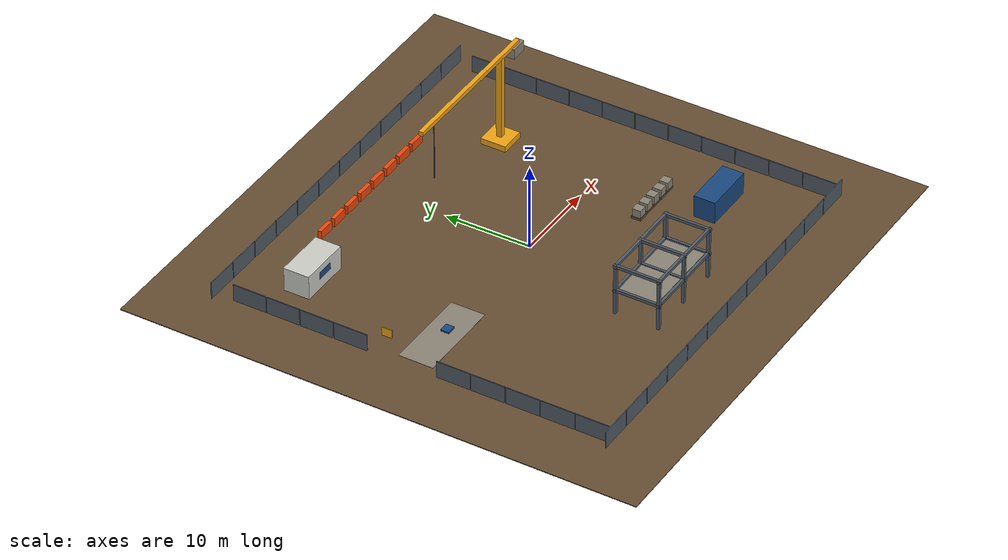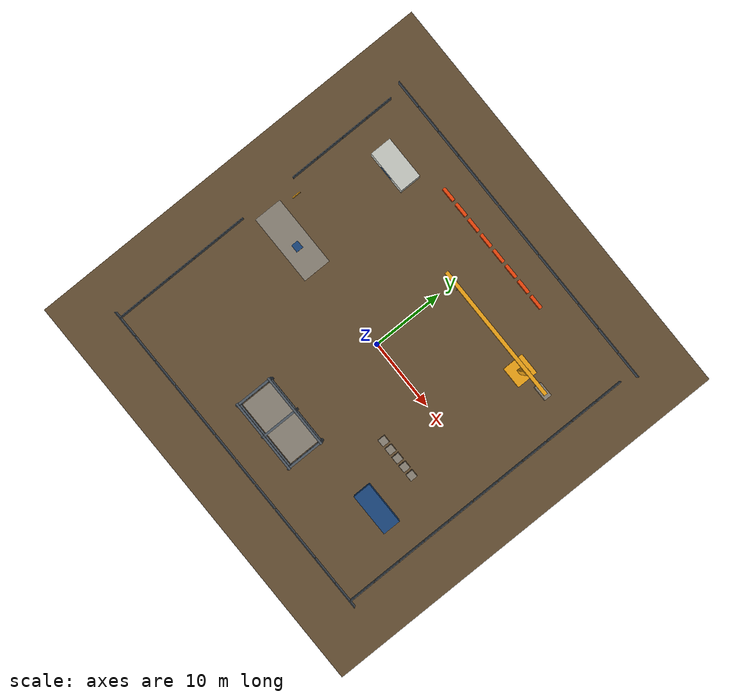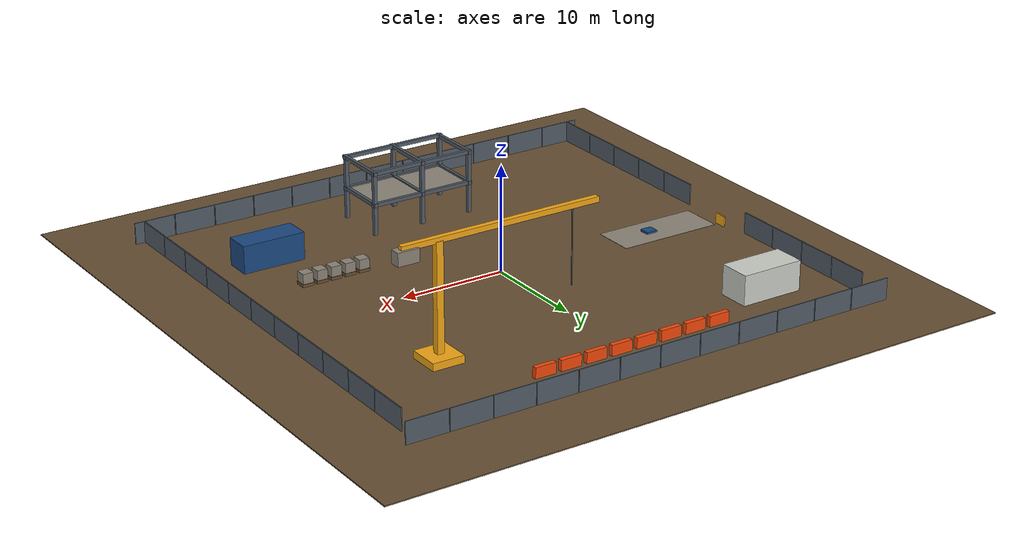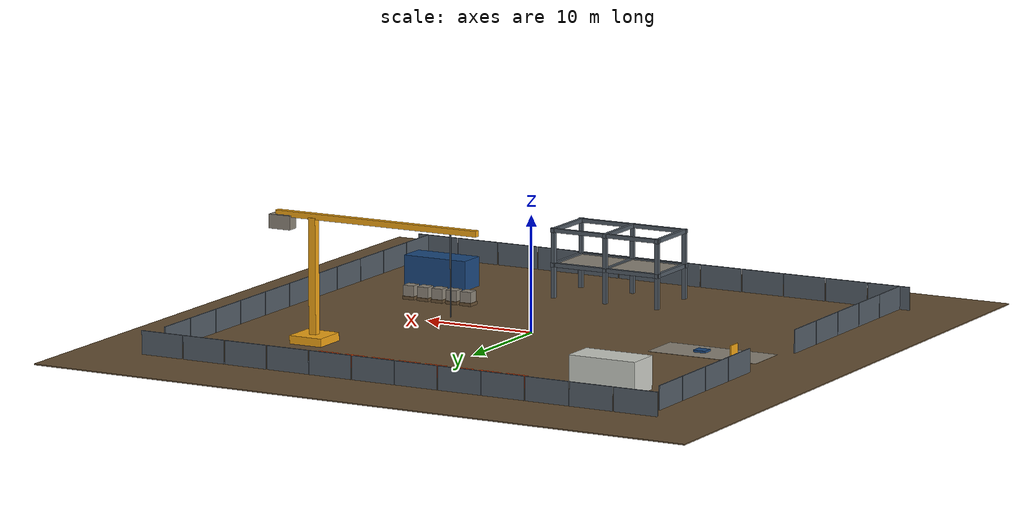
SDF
<?xml version='1.0' encoding='utf-8'?>
<sdf version="1.8">
  <world name="niihan_construction_site">
    <spherical_coordinates>
      <surface_model>EARTH_WGS84</surface_model>
      <world_frame_orientation>ENU</world_frame_orientation>
      <latitude_deg>12.9716</latitude_deg>
      <longitude_deg>77.5946</longitude_deg>
      <elevation>0</elevation>
      <heading_deg>0</heading_deg>
    </spherical_coordinates>
    <plugin filename="gz-sim-physics-system" name="gz::sim::systems::Physics" />
    <plugin filename="gz-sim-user-commands-system" name="gz::sim::systems::UserCommands" />
    <plugin filename="gz-sim-scene-broadcaster-system" name="gz::sim::systems::SceneBroadcaster" />
    <plugin filename="gz-sim-sensors-system" name="gz::sim::systems::Sensors">
      <render_engine>ogre2</render_engine>
    </plugin>
    <plugin filename="gz-sim-imu-system" name="gz::sim::systems::Imu" />
    <physics name="default_physics" type="ode">
      <max_step_size>0.001</max_step_size>
      <real_time_factor>1.0</real_time_factor>
      <real_time_update_rate>1000</real_time_update_rate>
      <ode>
        <solver>
          <type>quick</type>
          <iters>50</iters>
        </solver>
      </ode>
    </physics>
    <gravity>0 0 -9.81</gravity>
    <scene>
      <ambient>0.5 0.5 0.5 1</ambient>
      <background>0.6 0.7 0.8 1</background>
      <shadows>true</shadows>
    </scene>
    <light type="directional" name="sun">
      <cast_shadows>true</cast_shadows>
      <pose>0 0 15 0 0 0</pose>
      <diffuse>0.9 0.9 0.85 1</diffuse>
      <specular>0.2 0.2 0.2 1</specular>
      <direction>-0.4 0.2 -0.9</direction>
    </light>
    <plugin filename="gz-sim-contact-system" name="gz::sim::systems::Contact" />
    <plugin filename="gz-sim-navsat-system" name="gz::sim::systems::NavSat" />
    <model name="fence_n_0">
      <static>true</static>
      <pose>-22 23 1.1 0 0 0</pose>
      <link name="body">
        <collision name="collision">
          <geometry>
            <box>
              <size>3.9 0.1 2</size>
            </box>
          </geometry>
        </collision>
        <visual name="visual">
          <geometry>
            <box>
              <size>3.9 0.1 2</size>
            </box>
          </geometry>
          <material>
            <ambient>.32 .36 .40 1</ambient>
            <diffuse>.32 .36 .40 1</diffuse>
          </material>
        </visual>
      </link>
    </model>
    <model name="fence_s_0">
      <static>true</static>
      <pose>-22 -23 1.1 0 0 0</pose>
      <link name="body">
        <collision name="collision">
          <geometry>
            <box>
              <size>3.9 0.1 2</size>
            </box>
          </geometry>
        </collision>
        <visual name="visual">
          <geometry>
            <box>
              <size>3.9 0.1 2</size>
            </box>
          </geometry>
          <material>
            <ambient>.32 .36 .40 1</ambient>
            <diffuse>.32 .36 .40 1</diffuse>
          </material>
        </visual>
      </link>
    </model>
    <model name="fence_n_1">
      <static>true</static>
      <pose>-18 23 1.1 0 0 0</pose>
      <link name="body">
        <collision name="collision">
          <geometry>
            <box>
              <size>3.9 0.1 2</size>
            </box>
          </geometry>
        </collision>
        <visual name="visual">
          <geometry>
            <box>
              <size>3.9 0.1 2</size>
            </box>
          </geometry>
          <material>
            <ambient>.32 .36 .40 1</ambient>
            <diffuse>.32 .36 .40 1</diffuse>
          </material>
        </visual>
      </link>
    </model>
    <model name="fence_s_1">
      <static>true</static>
      <pose>-18 -23 1.1 0 0 0</pose>
      <link name="body">
        <collision name="collision">
          <geometry>
            <box>
              <size>3.9 0.1 2</size>
            </box>
          </geometry>
        </collision>
        <visual name="visual">
          <geometry>
            <box>
              <size>3.9 0.1 2</size>
            </box>
          </geometry>
          <material>
            <ambient>.32 .36 .40 1</ambient>
            <diffuse>.32 .36 .40 1</diffuse>
          </material>
        </visual>
      </link>
    </model>
    <model name="fence_n_2">
      <static>true</static>
      <pose>-14 23 1.1 0 0 0</pose>
      <link name="body">
        <collision name="collision">
          <geometry>
            <box>
              <size>3.9 0.1 2</size>
            </box>
          </geometry>
        </collision>
        <visual name="visual">
          <geometry>
            <box>
              <size>3.9 0.1 2</size>
            </box>
          </geometry>
          <material>
            <ambient>.32 .36 .40 1</ambient>
            <diffuse>.32 .36 .40 1</diffuse>
          </material>
        </visual>
      </link>
    </model>
    <model name="fence_s_2">
      <static>true</static>
      <pose>-14 -23 1.1 0 0 0</pose>
      <link name="body">
        <collision name="collision">
          <geometry>
            <box>
              <size>3.9 0.1 2</size>
            </box>
          </geometry>
        </collision>
        <visual name="visual">
          <geometry>
            <box>
              <size>3.9 0.1 2</size>
            </box>
          </geometry>
          <material>
            <ambient>.32 .36 .40 1</ambient>
            <diffuse>.32 .36 .40 1</diffuse>
          </material>
        </visual>
      </link>
    </model>
    <model name="fence_n_3">
      <static>true</static>
      <pose>-10 23 1.1 0 0 0</pose>
      <link name="body">
        <collision name="collision">
          <geometry>
            <box>
              <size>3.9 0.1 2</size>
            </box>
          </geometry>
        </collision>
        <visual name="visual">
          <geometry>
            <box>
              <size>3.9 0.1 2</size>
            </box>
          </geometry>
          <material>
            <ambient>.32 .36 .40 1</ambient>
            <diffuse>.32 .36 .40 1</diffuse>
          </material>
        </visual>
      </link>
    </model>
    <model name="fence_s_3">
      <static>true</static>
      <pose>-10 -23 1.1 0 0 0</pose>
      <link name="body">
        <collision name="collision">
          <geometry>
            <box>
              <size>3.9 0.1 2</size>
            </box>
          </geometry>
        </collision>
        <visual name="visual">
          <geometry>
            <box>
              <size>3.9 0.1 2</size>
            </box>
          </geometry>
          <material>
            <ambient>.32 .36 .40 1</ambient>
            <diffuse>.32 .36 .40 1</diffuse>
          </material>
        </visual>
      </link>
    </model>
    <model name="fence_n_4">
      <static>true</static>
      <pose>-6 23 1.1 0 0 0</pose>
      <link name="body">
        <collision name="collision">
          <geometry>
            <box>
              <size>3.9 0.1 2</size>
            </box>
          </geometry>
        </collision>
        <visual name="visual">
          <geometry>
            <box>
              <size>3.9 0.1 2</size>
            </box>
          </geometry>
          <material>
            <ambient>.32 .36 .40 1</ambient>
            <diffuse>.32 .36 .40 1</diffuse>
          </material>
        </visual>
      </link>
    </model>
    <model name="fence_s_4">
      <static>true</static>
      <pose>-6 -23 1.1 0 0 0</pose>
      <link name="body">
        <collision name="collision">
          <geometry>
            <box>
              <size>3.9 0.1 2</size>
            </box>
          </geometry>
        </collision>
        <visual name="visual">
          <geometry>
            <box>
              <size>3.9 0.1 2</size>
            </box>
          </geometry>
          <material>
            <ambient>.32 .36 .40 1</ambient>
            <diffuse>.32 .36 .40 1</diffuse>
          </material>
        </visual>
      </link>
    </model>
    <model name="fence_n_5">
      <static>true</static>
      <pose>-2 23 1.1 0 0 0</pose>
      <link name="body">
        <collision name="collision">
          <geometry>
            <box>
              <size>3.9 0.1 2</size>
            </box>
          </geometry>
        </collision>
        <visual name="visual">
          <geometry>
            <box>
              <size>3.9 0.1 2</size>
            </box>
          </geometry>
          <material>
            <ambient>.32 .36 .40 1</ambient>
            <diffuse>.32 .36 .40 1</diffuse>
          </material>
        </visual>
      </link>
    </model>
    <model name="fence_s_5">
      <static>true</static>
      <pose>-2 -23 1.1 0 0 0</pose>
      <link name="body">
        <collision name="collision">
          <geometry>
            <box>
              <size>3.9 0.1 2</size>
            </box>
          </geometry>
        </collision>
        <visual name="visual">
          <geometry>
            <box>
              <size>3.9 0.1 2</size>
            </box>
          </geometry>
          <material>
            <ambient>.32 .36 .40 1</ambient>
            <diffuse>.32 .36 .40 1</diffuse>
          </material>
        </visual>
      </link>
    </model>
    <model name="fence_n_6">
      <static>true</static>
      <pose>2 23 1.1 0 0 0</pose>
      <link name="body">
        <collision name="collision">
          <geometry>
            <box>
              <size>3.9 0.1 2</size>
            </box>
          </geometry>
        </collision>
        <visual name="visual">
          <geometry>
            <box>
              <size>3.9 0.1 2</size>
            </box>
          </geometry>
          <material>
            <ambient>.32 .36 .40 1</ambient>
            <diffuse>.32 .36 .40 1</diffuse>
          </material>
        </visual>
      </link>
    </model>
    <model name="fence_s_6">
      <static>true</static>
      <pose>2 -23 1.1 0 0 0</pose>
      <link name="body">
        <collision name="collision">
          <geometry>
            <box>
              <size>3.9 0.1 2</size>
            </box>
          </geometry>
        </collision>
        <visual name="visual">
          <geometry>
            <box>
              <size>3.9 0.1 2</size>
            </box>
          </geometry>
          <material>
            <ambient>.32 .36 .40 1</ambient>
            <diffuse>.32 .36 .40 1</diffuse>
          </material>
        </visual>
      </link>
    </model>
    <model name="fence_n_7">
      <static>true</static>
      <pose>6 23 1.1 0 0 0</pose>
      <link name="body">
        <collision name="collision">
          <geometry>
            <box>
              <size>3.9 0.1 2</size>
            </box>
          </geometry>
        </collision>
        <visual name="visual">
          <geometry>
            <box>
              <size>3.9 0.1 2</size>
            </box>
          </geometry>
          <material>
            <ambient>.32 .36 .40 1</ambient>
            <diffuse>.32 .36 .40 1</diffuse>
          </material>
        </visual>
      </link>
    </model>
    <model name="fence_s_7">
      <static>true</static>
      <pose>6 -23 1.1 0 0 0</pose>
      <link name="body">
        <collision name="collision">
          <geometry>
            <box>
              <size>3.9 0.1 2</size>
            </box>
          </geometry>
        </collision>
        <visual name="visual">
          <geometry>
            <box>
              <size>3.9 0.1 2</size>
            </box>
          </geometry>
          <material>
            <ambient>.32 .36 .40 1</ambient>
            <diffuse>.32 .36 .40 1</diffuse>
          </material>
        </visual>
      </link>
    </model>
    <model name="fence_n_8">
      <static>true</static>
      <pose>10 23 1.1 0 0 0</pose>
      <link name="body">
        <collision name="collision">
          <geometry>
            <box>
              <size>3.9 0.1 2</size>
            </box>
          </geometry>
        </collision>
        <visual name="visual">
          <geometry>
            <box>
              <size>3.9 0.1 2</size>
            </box>
          </geometry>
          <material>
            <ambient>.32 .36 .40 1</ambient>
            <diffuse>.32 .36 .40 1</diffuse>
          </material>
        </visual>
      </link>
    </model>
    <model name="fence_s_8">
      <static>true</static>
      <pose>10 -23 1.1 0 0 0</pose>
      <link name="body">
        <collision name="collision">
          <geometry>
            <box>
              <size>3.9 0.1 2</size>
            </box>
          </geometry>
        </collision>
        <visual name="visual">
          <geometry>
            <box>
              <size>3.9 0.1 2</size>
            </box>
          </geometry>
          <material>
            <ambient>.32 .36 .40 1</ambient>
            <diffuse>.32 .36 .40 1</diffuse>
          </material>
        </visual>
      </link>
    </model>
    <model name="fence_n_9">
      <static>true</static>
      <pose>14 23 1.1 0 0 0</pose>
      <link name="body">
        <collision name="collision">
          <geometry>
            <box>
              <size>3.9 0.1 2</size>
            </box>
          </geometry>
        </collision>
        <visual name="visual">
          <geometry>
            <box>
              <size>3.9 0.1 2</size>
            </box>
          </geometry>
          <material>
            <ambient>.32 .36 .40 1</ambient>
            <diffuse>.32 .36 .40 1</diffuse>
          </material>
        </visual>
      </link>
    </model>
    <model name="fence_s_9">
      <static>true</static>
      <pose>14 -23 1.1 0 0 0</pose>
      <link name="body">
        <collision name="collision">
          <geometry>
            <box>
              <size>3.9 0.1 2</size>
            </box>
          </geometry>
        </collision>
        <visual name="visual">
          <geometry>
            <box>
              <size>3.9 0.1 2</size>
            </box>
          </geometry>
          <material>
            <ambient>.32 .36 .40 1</ambient>
            <diffuse>.32 .36 .40 1</diffuse>
          </material>
        </visual>
      </link>
    </model>
    <model name="fence_n_10">
      <static>true</static>
      <pose>18 23 1.1 0 0 0</pose>
      <link name="body">
        <collision name="collision">
          <geometry>
            <box>
              <size>3.9 0.1 2</size>
            </box>
          </geometry>
        </collision>
        <visual name="visual">
          <geometry>
            <box>
              <size>3.9 0.1 2</size>
            </box>
          </geometry>
          <material>
            <ambient>.32 .36 .40 1</ambient>
            <diffuse>.32 .36 .40 1</diffuse>
          </material>
        </visual>
      </link>
    </model>
    <model name="fence_s_10">
      <static>true</static>
      <pose>18 -23 1.1 0 0 0</pose>
      <link name="body">
        <collision name="collision">
          <geometry>
            <box>
              <size>3.9 0.1 2</size>
            </box>
          </geometry>
        </collision>
        <visual name="visual">
          <geometry>
            <box>
              <size>3.9 0.1 2</size>
            </box>
          </geometry>
          <material>
            <ambient>.32 .36 .40 1</ambient>
            <diffuse>.32 .36 .40 1</diffuse>
          </material>
        </visual>
      </link>
    </model>
    <model name="fence_n_11">
      <static>true</static>
      <pose>22 23 1.1 0 0 0</pose>
      <link name="body">
        <collision name="collision">
          <geometry>
            <box>
              <size>3.9 0.1 2</size>
            </box>
          </geometry>
        </collision>
        <visual name="visual">
          <geometry>
            <box>
              <size>3.9 0.1 2</size>
            </box>
          </geometry>
          <material>
            <ambient>.32 .36 .40 1</ambient>
            <diffuse>.32 .36 .40 1</diffuse>
          </material>
        </visual>
      </link>
    </model>
    <model name="fence_s_11">
      <static>true</static>
      <pose>22 -23 1.1 0 0 0</pose>
      <link name="body">
        <collision name="collision">
          <geometry>
            <box>
              <size>3.9 0.1 2</size>
            </box>
          </geometry>
        </collision>
        <visual name="visual">
          <geometry>
            <box>
              <size>3.9 0.1 2</size>
            </box>
          </geometry>
          <material>
            <ambient>.32 .36 .40 1</ambient>
            <diffuse>.32 .36 .40 1</diffuse>
          </material>
        </visual>
      </link>
    </model>
    <model name="fence_e_0">
      <static>true</static>
      <pose>23 -21 1.1 0 0 0</pose>
      <link name="body">
        <collision name="collision">
          <geometry>
            <box>
              <size>0.1 3.9 2</size>
            </box>
          </geometry>
        </collision>
        <visual name="visual">
          <geometry>
            <box>
              <size>0.1 3.9 2</size>
            </box>
          </geometry>
          <material>
            <ambient>.32 .36 .40 1</ambient>
            <diffuse>.32 .36 .40 1</diffuse>
          </material>
        </visual>
      </link>
    </model>
    <model name="fence_w_0">
      <static>true</static>
      <pose>-23 -21 1.1 0 0 0</pose>
      <link name="body">
        <collision name="collision">
          <geometry>
            <box>
              <size>0.1 3.9 2</size>
            </box>
          </geometry>
        </collision>
        <visual name="visual">
          <geometry>
            <box>
              <size>0.1 3.9 2</size>
            </box>
          </geometry>
          <material>
            <ambient>.32 .36 .40 1</ambient>
            <diffuse>.32 .36 .40 1</diffuse>
          </material>
        </visual>
      </link>
    </model>
    <model name="fence_e_1">
      <static>true</static>
      <pose>23 -17 1.1 0 0 0</pose>
      <link name="body">
        <collision name="collision">
          <geometry>
            <box>
              <size>0.1 3.9 2</size>
            </box>
          </geometry>
        </collision>
        <visual name="visual">
          <geometry>
            <box>
              <size>0.1 3.9 2</size>
            </box>
          </geometry>
          <material>
            <ambient>.32 .36 .40 1</ambient>
            <diffuse>.32 .36 .40 1</diffuse>
          </material>
        </visual>
      </link>
    </model>
    <model name="fence_w_1">
      <static>true</static>
      <pose>-23 -17 1.1 0 0 0</pose>
      <link name="body">
        <collision name="collision">
          <geometry>
            <box>
              <size>0.1 3.9 2</size>
            </box>
          </geometry>
        </collision>
        <visual name="visual">
          <geometry>
            <box>
              <size>0.1 3.9 2</size>
            </box>
          </geometry>
          <material>
            <ambient>.32 .36 .40 1</ambient>
            <diffuse>.32 .36 .40 1</diffuse>
          </material>
        </visual>
      </link>
    </model>
    <model name="fence_e_2">
      <static>true</static>
      <pose>23 -13 1.1 0 0 0</pose>
      <link name="body">
        <collision name="collision">
          <geometry>
            <box>
              <size>0.1 3.9 2</size>
            </box>
          </geometry>
        </collision>
        <visual name="visual">
          <geometry>
            <box>
              <size>0.1 3.9 2</size>
            </box>
          </geometry>
          <material>
            <ambient>.32 .36 .40 1</ambient>
            <diffuse>.32 .36 .40 1</diffuse>
          </material>
        </visual>
      </link>
    </model>
    <model name="fence_w_2">
      <static>true</static>
      <pose>-23 -13 1.1 0 0 0</pose>
      <link name="body">
        <collision name="collision">
          <geometry>
            <box>
              <size>0.1 3.9 2</size>
            </box>
          </geometry>
        </collision>
        <visual name="visual">
          <geometry>
            <box>
              <size>0.1 3.9 2</size>
            </box>
          </geometry>
          <material>
            <ambient>.32 .36 .40 1</ambient>
            <diffuse>.32 .36 .40 1</diffuse>
          </material>
        </visual>
      </link>
    </model>
    <model name="fence_e_3">
      <static>true</static>
      <pose>23 -9 1.1 0 0 0</pose>
      <link name="body">
        <collision name="collision">
          <geometry>
            <box>
              <size>0.1 3.9 2</size>
            </box>
          </geometry>
        </collision>
        <visual name="visual">
          <geometry>
            <box>
              <size>0.1 3.9 2</size>
            </box>
          </geometry>
          <material>
            <ambient>.32 .36 .40 1</ambient>
            <diffuse>.32 .36 .40 1</diffuse>
          </material>
        </visual>
      </link>
    </model>
    <model name="fence_w_3">
      <static>true</static>
      <pose>-23 -9 1.1 0 0 0</pose>
      <link name="body">
        <collision name="collision">
          <geometry>
            <box>
              <size>0.1 3.9 2</size>
            </box>
          </geometry>
        </collision>
        <visual name="visual">
          <geometry>
            <box>
              <size>0.1 3.9 2</size>
            </box>
          </geometry>
          <material>
            <ambient>.32 .36 .40 1</ambient>
            <diffuse>.32 .36 .40 1</diffuse>
          </material>
        </visual>
      </link>
    </model>
    <model name="fence_e_4">
      <static>true</static>
      <pose>23 -5 1.1 0 0 0</pose>
      <link name="body">
        <collision name="collision">
          <geometry>
            <box>
              <size>0.1 3.9 2</size>
            </box>
          </geometry>
        </collision>
        <visual name="visual">
          <geometry>
            <box>
              <size>0.1 3.9 2</size>
            </box>
          </geometry>
          <material>
            <ambient>.32 .36 .40 1</ambient>
            <diffuse>.32 .36 .40 1</diffuse>
          </material>
        </visual>
      </link>
    </model>
    <model name="fence_w_4">
      <static>true</static>
      <pose>-23 -5 1.1 0 0 0</pose>
      <link name="body">
        <collision name="collision">
          <geometry>
            <box>
              <size>0.1 3.9 2</size>
            </box>
          </geometry>
        </collision>
        <visual name="visual">
          <geometry>
            <box>
              <size>0.1 3.9 2</size>
            </box>
          </geometry>
          <material>
            <ambient>.32 .36 .40 1</ambient>
            <diffuse>.32 .36 .40 1</diffuse>
          </material>
        </visual>
      </link>
    </model>
    <model name="fence_e_5">
      <static>true</static>
      <pose>23 -1 1.1 0 0 0</pose>
      <link name="body">
        <collision name="collision">
          <geometry>
            <box>
              <size>0.1 3.9 2</size>
            </box>
          </geometry>
        </collision>
        <visual name="visual">
          <geometry>
            <box>
              <size>0.1 3.9 2</size>
            </box>
          </geometry>
          <material>
            <ambient>.32 .36 .40 1</ambient>
            <diffuse>.32 .36 .40 1</diffuse>
          </material>
        </visual>
      </link>
    </model>
    <model name="fence_e_6">
      <static>true</static>
      <pose>23 3 1.1 0 0 0</pose>
      <link name="body">
        <collision name="collision">
          <geometry>
            <box>
              <size>0.1 3.9 2</size>
            </box>
          </geometry>
        </collision>
        <visual name="visual">
          <geometry>
            <box>
              <size>0.1 3.9 2</size>
            </box>
          </geometry>
          <material>
            <ambient>.32 .36 .40 1</ambient>
            <diffuse>.32 .36 .40 1</diffuse>
          </material>
        </visual>
      </link>
    </model>
    <model name="fence_e_7">
      <static>true</static>
      <pose>23 7 1.1 0 0 0</pose>
      <link name="body">
        <collision name="collision">
          <geometry>
            <box>
              <size>0.1 3.9 2</size>
            </box>
          </geometry>
        </collision>
        <visual name="visual">
          <geometry>
            <box>
              <size>0.1 3.9 2</size>
            </box>
          </geometry>
          <material>
            <ambient>.32 .36 .40 1</ambient>
            <diffuse>.32 .36 .40 1</diffuse>
          </material>
        </visual>
      </link>
    </model>
    <model name="fence_w_7">
      <static>true</static>
      <pose>-23 7 1.1 0 0 0</pose>
      <link name="body">
        <collision name="collision">
          <geometry>
            <box>
              <size>0.1 3.9 2</size>
            </box>
          </geometry>
        </collision>
        <visual name="visual">
          <geometry>
            <box>
              <size>0.1 3.9 2</size>
            </box>
          </geometry>
          <material>
            <ambient>.32 .36 .40 1</ambient>
            <diffuse>.32 .36 .40 1</diffuse>
          </material>
        </visual>
      </link>
    </model>
    <model name="fence_e_8">
      <static>true</static>
      <pose>23 11 1.1 0 0 0</pose>
      <link name="body">
        <collision name="collision">
          <geometry>
            <box>
              <size>0.1 3.9 2</size>
            </box>
          </geometry>
        </collision>
        <visual name="visual">
          <geometry>
            <box>
              <size>0.1 3.9 2</size>
            </box>
          </geometry>
          <material>
            <ambient>.32 .36 .40 1</ambient>
            <diffuse>.32 .36 .40 1</diffuse>
          </material>
        </visual>
      </link>
    </model>
    <model name="fence_w_8">
      <static>true</static>
      <pose>-23 11 1.1 0 0 0</pose>
      <link name="body">
        <collision name="collision">
          <geometry>
            <box>
              <size>0.1 3.9 2</size>
            </box>
          </geometry>
        </collision>
        <visual name="visual">
          <geometry>
            <box>
              <size>0.1 3.9 2</size>
            </box>
          </geometry>
          <material>
            <ambient>.32 .36 .40 1</ambient>
            <diffuse>.32 .36 .40 1</diffuse>
          </material>
        </visual>
      </link>
    </model>
    <model name="fence_e_9">
      <static>true</static>
      <pose>23 15 1.1 0 0 0</pose>
      <link name="body">
        <collision name="collision">
          <geometry>
            <box>
              <size>0.1 3.9 2</size>
            </box>
          </geometry>
        </collision>
        <visual name="visual">
          <geometry>
            <box>
              <size>0.1 3.9 2</size>
            </box>
          </geometry>
          <material>
            <ambient>.32 .36 .40 1</ambient>
            <diffuse>.32 .36 .40 1</diffuse>
          </material>
        </visual>
      </link>
    </model>
    <model name="fence_w_9">
      <static>true</static>
      <pose>-23 15 1.1 0 0 0</pose>
      <link name="body">
        <collision name="collision">
          <geometry>
            <box>
              <size>0.1 3.9 2</size>
            </box>
          </geometry>
        </collision>
        <visual name="visual">
          <geometry>
            <box>
              <size>0.1 3.9 2</size>
            </box>
          </geometry>
          <material>
            <ambient>.32 .36 .40 1</ambient>
            <diffuse>.32 .36 .40 1</diffuse>
          </material>
        </visual>
      </link>
    </model>
    <model name="fence_e_10">
      <static>true</static>
      <pose>23 19 1.1 0 0 0</pose>
      <link name="body">
        <collision name="collision">
          <geometry>
            <box>
              <size>0.1 3.9 2</size>
            </box>
          </geometry>
        </collision>
        <visual name="visual">
          <geometry>
            <box>
              <size>0.1 3.9 2</size>
            </box>
          </geometry>
          <material>
            <ambient>.32 .36 .40 1</ambient>
            <diffuse>.32 .36 .40 1</diffuse>
          </material>
        </visual>
      </link>
    </model>
    <model name="fence_w_10">
      <static>true</static>
      <pose>-23 19 1.1 0 0 0</pose>
      <link name="body">
        <collision name="collision">
          <geometry>
            <box>
              <size>0.1 3.9 2</size>
            </box>
          </geometry>
        </collision>
        <visual name="visual">
          <geometry>
            <box>
              <size>0.1 3.9 2</size>
            </box>
          </geometry>
          <material>
            <ambient>.32 .36 .40 1</ambient>
            <diffuse>.32 .36 .40 1</diffuse>
          </material>
        </visual>
      </link>
    </model>
    <model name="column_-5_-18">
      <static>true</static>
      <pose>-5 -18 3 0 0 0</pose>
      <link name="body">
        <collision name="collision">
          <geometry>
            <box>
              <size>0.35 0.35 5.8</size>
            </box>
          </geometry>
        </collision>
        <visual name="visual">
          <geometry>
            <box>
              <size>0.35 0.35 5.8</size>
            </box>
          </geometry>
          <material>
            <ambient>.32 .36 .40 1</ambient>
            <diffuse>.32 .36 .40 1</diffuse>
          </material>
        </visual>
      </link>
    </model>
    <model name="column_-5_-13">
      <static>true</static>
      <pose>-5 -13 3 0 0 0</pose>
      <link name="body">
        <collision name="collision">
          <geometry>
            <box>
              <size>0.35 0.35 5.8</size>
            </box>
          </geometry>
        </collision>
        <visual name="visual">
          <geometry>
            <box>
              <size>0.35 0.35 5.8</size>
            </box>
          </geometry>
          <material>
            <ambient>.32 .36 .40 1</ambient>
            <diffuse>.32 .36 .40 1</diffuse>
          </material>
        </visual>
      </link>
    </model>
    <model name="column_0_-18">
      <static>true</static>
      <pose>0 -18 3 0 0 0</pose>
      <link name="body">
        <collision name="collision">
          <geometry>
            <box>
              <size>0.35 0.35 5.8</size>
            </box>
          </geometry>
        </collision>
        <visual name="visual">
          <geometry>
            <box>
              <size>0.35 0.35 5.8</size>
            </box>
          </geometry>
          <material>
            <ambient>.32 .36 .40 1</ambient>
            <diffuse>.32 .36 .40 1</diffuse>
          </material>
        </visual>
      </link>
    </model>
    <model name="column_0_-13">
      <static>true</static>
      <pose>0 -13 3 0 0 0</pose>
      <link name="body">
        <collision name="collision">
          <geometry>
            <box>
              <size>0.35 0.35 5.8</size>
            </box>
          </geometry>
        </collision>
        <visual name="visual">
          <geometry>
            <box>
              <size>0.35 0.35 5.8</size>
            </box>
          </geometry>
          <material>
            <ambient>.32 .36 .40 1</ambient>
            <diffuse>.32 .36 .40 1</diffuse>
          </material>
        </visual>
      </link>
    </model>
    <model name="column_5_-18">
      <static>true</static>
      <pose>5 -18 3 0 0 0</pose>
      <link name="body">
        <collision name="collision">
          <geometry>
            <box>
              <size>0.35 0.35 5.8</size>
            </box>
          </geometry>
        </collision>
        <visual name="visual">
          <geometry>
            <box>
              <size>0.35 0.35 5.8</size>
            </box>
          </geometry>
          <material>
            <ambient>.32 .36 .40 1</ambient>
            <diffuse>.32 .36 .40 1</diffuse>
          </material>
        </visual>
      </link>
    </model>
    <model name="column_5_-13">
      <static>true</static>
      <pose>5 -13 3 0 0 0</pose>
      <link name="body">
        <collision name="collision">
          <geometry>
            <box>
              <size>0.35 0.35 5.8</size>
            </box>
          </geometry>
        </collision>
        <visual name="visual">
          <geometry>
            <box>
              <size>0.35 0.35 5.8</size>
            </box>
          </geometry>
          <material>
            <ambient>.32 .36 .40 1</ambient>
            <diffuse>.32 .36 .40 1</diffuse>
          </material>
        </visual>
      </link>
    </model>
    <model name="beam_x_-18_3">
      <static>true</static>
      <pose>0 -18 3 0 0 0</pose>
      <link name="body">
        <collision name="collision">
          <geometry>
            <box>
              <size>10.5 0.3 0.35</size>
            </box>
          </geometry>
        </collision>
        <visual name="visual">
          <geometry>
            <box>
              <size>10.5 0.3 0.35</size>
            </box>
          </geometry>
          <material>
            <ambient>.32 .36 .40 1</ambient>
            <diffuse>.32 .36 .40 1</diffuse>
          </material>
        </visual>
      </link>
    </model>
    <model name="beam_x_-13_3">
      <static>true</static>
      <pose>0 -13 3 0 0 0</pose>
      <link name="body">
        <collision name="collision">
          <geometry>
            <box>
              <size>10.5 0.3 0.35</size>
            </box>
          </geometry>
        </collision>
        <visual name="visual">
          <geometry>
            <box>
              <size>10.5 0.3 0.35</size>
            </box>
          </geometry>
          <material>
            <ambient>.32 .36 .40 1</ambient>
            <diffuse>.32 .36 .40 1</diffuse>
          </material>
        </visual>
      </link>
    </model>
    <model name="beam_y_-5_3">
      <static>true</static>
      <pose>-5 -15.5 3 0 0 0</pose>
      <link name="body">
        <collision name="collision">
          <geometry>
            <box>
              <size>0.3 5.5 0.35</size>
            </box>
          </geometry>
        </collision>
        <visual name="visual">
          <geometry>
            <box>
              <size>0.3 5.5 0.35</size>
            </box>
          </geometry>
          <material>
            <ambient>.32 .36 .40 1</ambient>
            <diffuse>.32 .36 .40 1</diffuse>
          </material>
        </visual>
      </link>
    </model>
    <model name="beam_y_0_3">
      <static>true</static>
      <pose>0 -15.5 3 0 0 0</pose>
      <link name="body">
        <collision name="collision">
          <geometry>
            <box>
              <size>0.3 5.5 0.35</size>
            </box>
          </geometry>
        </collision>
        <visual name="visual">
          <geometry>
            <box>
              <size>0.3 5.5 0.35</size>
            </box>
          </geometry>
          <material>
            <ambient>.32 .36 .40 1</ambient>
            <diffuse>.32 .36 .40 1</diffuse>
          </material>
        </visual>
      </link>
    </model>
    <model name="beam_y_5_3">
      <static>true</static>
      <pose>5 -15.5 3 0 0 0</pose>
      <link name="body">
        <collision name="collision">
          <geometry>
            <box>
              <size>0.3 5.5 0.35</size>
            </box>
          </geometry>
        </collision>
        <visual name="visual">
          <geometry>
            <box>
              <size>0.3 5.5 0.35</size>
            </box>
          </geometry>
          <material>
            <ambient>.32 .36 .40 1</ambient>
            <diffuse>.32 .36 .40 1</diffuse>
          </material>
        </visual>
      </link>
    </model>
    <model name="beam_x_-18_6">
      <static>true</static>
      <pose>0 -18 6 0 0 0</pose>
      <link name="body">
        <collision name="collision">
          <geometry>
            <box>
              <size>10.5 0.3 0.35</size>
            </box>
          </geometry>
        </collision>
        <visual name="visual">
          <geometry>
            <box>
              <size>10.5 0.3 0.35</size>
            </box>
          </geometry>
          <material>
            <ambient>.32 .36 .40 1</ambient>
            <diffuse>.32 .36 .40 1</diffuse>
          </material>
        </visual>
      </link>
    </model>
    <model name="beam_x_-13_6">
      <static>true</static>
      <pose>0 -13 6 0 0 0</pose>
      <link name="body">
        <collision name="collision">
          <geometry>
            <box>
              <size>10.5 0.3 0.35</size>
            </box>
          </geometry>
        </collision>
        <visual name="visual">
          <geometry>
            <box>
              <size>10.5 0.3 0.35</size>
            </box>
          </geometry>
          <material>
            <ambient>.32 .36 .40 1</ambient>
            <diffuse>.32 .36 .40 1</diffuse>
          </material>
        </visual>
      </link>
    </model>
    <model name="beam_y_-5_6">
      <static>true</static>
      <pose>-5 -15.5 6 0 0 0</pose>
      <link name="body">
        <collision name="collision">
          <geometry>
            <box>
              <size>0.3 5.5 0.35</size>
            </box>
          </geometry>
        </collision>
        <visual name="visual">
          <geometry>
            <box>
              <size>0.3 5.5 0.35</size>
            </box>
          </geometry>
          <material>
            <ambient>.32 .36 .40 1</ambient>
            <diffuse>.32 .36 .40 1</diffuse>
          </material>
        </visual>
      </link>
    </model>
    <model name="beam_y_0_6">
      <static>true</static>
      <pose>0 -15.5 6 0 0 0</pose>
      <link name="body">
        <collision name="collision">
          <geometry>
            <box>
              <size>0.3 5.5 0.35</size>
            </box>
          </geometry>
        </collision>
        <visual name="visual">
          <geometry>
            <box>
              <size>0.3 5.5 0.35</size>
            </box>
          </geometry>
          <material>
            <ambient>.32 .36 .40 1</ambient>
            <diffuse>.32 .36 .40 1</diffuse>
          </material>
        </visual>
      </link>
    </model>
    <model name="beam_y_5_6">
      <static>true</static>
      <pose>5 -15.5 6 0 0 0</pose>
      <link name="body">
        <collision name="collision">
          <geometry>
            <box>
              <size>0.3 5.5 0.35</size>
            </box>
          </geometry>
        </collision>
        <visual name="visual">
          <geometry>
            <box>
              <size>0.3 5.5 0.35</size>
            </box>
          </geometry>
          <material>
            <ambient>.32 .36 .40 1</ambient>
            <diffuse>.32 .36 .40 1</diffuse>
          </material>
        </visual>
      </link>
    </model>
    <model name="unfinished_floor">
      <static>true</static>
      <pose>0 -15.5 3 0 0 0</pose>
      <link name="body">
        <collision name="collision">
          <geometry>
            <box>
              <size>9.5 4.5 0.15</size>
            </box>
          </geometry>
        </collision>
        <visual name="visual">
          <geometry>
            <box>
              <size>9.5 4.5 0.15</size>
            </box>
          </geometry>
          <material>
            <ambient>.55 .52 .47 1</ambient>
            <diffuse>.55 .52 .47 1</diffuse>
          </material>
        </visual>
      </link>
    </model>
    <model name="crane_base">
      <static>true</static>
      <pose>14 12 0.4 0 0 0</pose>
      <link name="body">
        <collision name="collision">
          <geometry>
            <box>
              <size>3 3 0.7</size>
            </box>
          </geometry>
        </collision>
        <visual name="visual">
          <geometry>
            <box>
              <size>3 3 0.7</size>
            </box>
          </geometry>
          <material>
            <ambient>.95 .65 .08 1</ambient>
            <diffuse>.95 .65 .08 1</diffuse>
          </material>
        </visual>
      </link>
    </model>
    <model name="crane_tower">
      <static>true</static>
      <pose>14 12 5.5 0 0 0</pose>
      <link name="body">
        <collision name="collision">
          <geometry>
            <box>
              <size>0.65 0.65 10.2</size>
            </box>
          </geometry>
        </collision>
        <visual name="visual">
          <geometry>
            <box>
              <size>0.65 0.65 10.2</size>
            </box>
          </geometry>
          <material>
            <ambient>.95 .65 .08 1</ambient>
            <diffuse>.95 .65 .08 1</diffuse>
          </material>
        </visual>
      </link>
    </model>
    <model name="crane_boom">
      <static>true</static>
      <pose>8 12 10.7 0 0 0</pose>
      <link name="body">
        <collision name="collision">
          <geometry>
            <box>
              <size>19 0.5 0.5</size>
            </box>
          </geometry>
        </collision>
        <visual name="visual">
          <geometry>
            <box>
              <size>19 0.5 0.5</size>
            </box>
          </geometry>
          <material>
            <ambient>.95 .65 .08 1</ambient>
            <diffuse>.95 .65 .08 1</diffuse>
          </material>
        </visual>
      </link>
    </model>
    <model name="crane_counterweight">
      <static>true</static>
      <pose>17 12 10 0 0 0</pose>
      <link name="body">
        <collision name="collision">
          <geometry>
            <box>
              <size>2 1 1.2</size>
            </box>
          </geometry>
        </collision>
        <visual name="visual">
          <geometry>
            <box>
              <size>2 1 1.2</size>
            </box>
          </geometry>
          <material>
            <ambient>.55 .52 .47 1</ambient>
            <diffuse>.55 .52 .47 1</diffuse>
          </material>
        </visual>
      </link>
    </model>
    <model name="crane_hook">
      <static>true</static>
      <pose>1 12 7 0 0 0</pose>
      <link name="body">
        <collision name="collision">
          <geometry>
            <box>
              <size>0.08 0.08 7</size>
            </box>
          </geometry>
        </collision>
        <visual name="visual">
          <geometry>
            <box>
              <size>0.08 0.08 7</size>
            </box>
          </geometry>
          <material>
            <ambient>.32 .36 .40 1</ambient>
            <diffuse>.32 .36 .40 1</diffuse>
          </material>
        </visual>
      </link>
    </model>
    <model name="site_office">
      <static>true</static>
      <pose>-16 16 1.5 0 0 0</pose>
      <link name="body">
        <collision name="collision">
          <geometry>
            <box>
              <size>6 3 2.8</size>
            </box>
          </geometry>
        </collision>
        <visual name="visual">
          <geometry>
            <box>
              <size>6 3 2.8</size>
            </box>
          </geometry>
          <material>
            <ambient>.8 .81 .78 1</ambient>
            <diffuse>.8 .81 .78 1</diffuse>
          </material>
        </visual>
      </link>
    </model>
    <model name="office_window">
      <static>true</static>
      <pose>-16 14.47 1.75 0 0 0</pose>
      <link name="body">
        <collision name="collision">
          <geometry>
            <box>
              <size>2 0.03 0.85</size>
            </box>
          </geometry>
        </collision>
        <visual name="visual">
          <geometry>
            <box>
              <size>2 0.03 0.85</size>
            </box>
          </geometry>
          <material>
            <ambient>.1 .28 .5 1</ambient>
            <diffuse>.1 .28 .5 1</diffuse>
          </material>
        </visual>
      </link>
    </model>
    <model name="storage_container">
      <static>true</static>
      <pose>16 -13 1.4 0 0 0</pose>
      <link name="body">
        <collision name="collision">
          <geometry>
            <box>
              <size>6 2.5 2.6</size>
            </box>
          </geometry>
        </collision>
        <visual name="visual">
          <geometry>
            <box>
              <size>6 2.5 2.6</size>
            </box>
          </geometry>
          <material>
            <ambient>.1 .28 .5 1</ambient>
            <diffuse>.1 .28 .5 1</diffuse>
          </material>
        </visual>
      </link>
    </model>
    <model name="material_pallet_0">
      <static>true</static>
      <pose>10.0 -7 0.22 0 0 0</pose>
      <link name="body">
        <collision name="collision">
          <geometry>
            <box>
              <size>1.1 1.1 0.28</size>
            </box>
          </geometry>
        </collision>
        <visual name="visual">
          <geometry>
            <box>
              <size>1.1 1.1 0.28</size>
            </box>
          </geometry>
          <material>
            <ambient>.40 .31 .20 1</ambient>
            <diffuse>.40 .31 .20 1</diffuse>
          </material>
        </visual>
      </link>
    </model>
    <model name="block_stack_0">
      <static>true</static>
      <pose>10.0 -7 0.8 0 0 0</pose>
      <link name="body">
        <collision name="collision">
          <geometry>
            <box>
              <size>1 1 1</size>
            </box>
          </geometry>
        </collision>
        <visual name="visual">
          <geometry>
            <box>
              <size>1 1 1</size>
            </box>
          </geometry>
          <material>
            <ambient>.55 .52 .47 1</ambient>
            <diffuse>.55 .52 .47 1</diffuse>
          </material>
        </visual>
      </link>
    </model>
    <model name="material_pallet_1">
      <static>true</static>
      <pose>11.4 -7 0.22 0 0 0</pose>
      <link name="body">
        <collision name="collision">
          <geometry>
            <box>
              <size>1.1 1.1 0.28</size>
            </box>
          </geometry>
        </collision>
        <visual name="visual">
          <geometry>
            <box>
              <size>1.1 1.1 0.28</size>
            </box>
          </geometry>
          <material>
            <ambient>.40 .31 .20 1</ambient>
            <diffuse>.40 .31 .20 1</diffuse>
          </material>
        </visual>
      </link>
    </model>
    <model name="block_stack_1">
      <static>true</static>
      <pose>11.4 -7 0.8 0 0 0</pose>
      <link name="body">
        <collision name="collision">
          <geometry>
            <box>
              <size>1 1 1</size>
            </box>
          </geometry>
        </collision>
        <visual name="visual">
          <geometry>
            <box>
              <size>1 1 1</size>
            </box>
          </geometry>
          <material>
            <ambient>.55 .52 .47 1</ambient>
            <diffuse>.55 .52 .47 1</diffuse>
          </material>
        </visual>
      </link>
    </model>
    <model name="material_pallet_2">
      <static>true</static>
      <pose>12.8 -7 0.22 0 0 0</pose>
      <link name="body">
        <collision name="collision">
          <geometry>
            <box>
              <size>1.1 1.1 0.28</size>
            </box>
          </geometry>
        </collision>
        <visual name="visual">
          <geometry>
            <box>
              <size>1.1 1.1 0.28</size>
            </box>
          </geometry>
          <material>
            <ambient>.40 .31 .20 1</ambient>
            <diffuse>.40 .31 .20 1</diffuse>
          </material>
        </visual>
      </link>
    </model>
    <model name="block_stack_2">
      <static>true</static>
      <pose>12.8 -7 0.8 0 0 0</pose>
      <link name="body">
        <collision name="collision">
          <geometry>
            <box>
              <size>1 1 1</size>
            </box>
          </geometry>
        </collision>
        <visual name="visual">
          <geometry>
            <box>
              <size>1 1 1</size>
            </box>
          </geometry>
          <material>
            <ambient>.55 .52 .47 1</ambient>
            <diffuse>.55 .52 .47 1</diffuse>
          </material>
        </visual>
      </link>
    </model>
    <model name="material_pallet_3">
      <static>true</static>
      <pose>14.2 -7 0.22 0 0 0</pose>
      <link name="body">
        <collision name="collision">
          <geometry>
            <box>
              <size>1.1 1.1 0.28</size>
            </box>
          </geometry>
        </collision>
        <visual name="visual">
          <geometry>
            <box>
              <size>1.1 1.1 0.28</size>
            </box>
          </geometry>
          <material>
            <ambient>.40 .31 .20 1</ambient>
            <diffuse>.40 .31 .20 1</diffuse>
          </material>
        </visual>
      </link>
    </model>
    <model name="block_stack_3">
      <static>true</static>
      <pose>14.2 -7 0.8 0 0 0</pose>
      <link name="body">
        <collision name="collision">
          <geometry>
            <box>
              <size>1 1 1</size>
            </box>
          </geometry>
        </collision>
        <visual name="visual">
          <geometry>
            <box>
              <size>1 1 1</size>
            </box>
          </geometry>
          <material>
            <ambient>.55 .52 .47 1</ambient>
            <diffuse>.55 .52 .47 1</diffuse>
          </material>
        </visual>
      </link>
    </model>
    <model name="material_pallet_4">
      <static>true</static>
      <pose>15.6 -7 0.22 0 0 0</pose>
      <link name="body">
        <collision name="collision">
          <geometry>
            <box>
              <size>1.1 1.1 0.28</size>
            </box>
          </geometry>
        </collision>
        <visual name="visual">
          <geometry>
            <box>
              <size>1.1 1.1 0.28</size>
            </box>
          </geometry>
          <material>
            <ambient>.40 .31 .20 1</ambient>
            <diffuse>.40 .31 .20 1</diffuse>
          </material>
        </visual>
      </link>
    </model>
    <model name="block_stack_4">
      <static>true</static>
      <pose>15.6 -7 0.8 0 0 0</pose>
      <link name="body">
        <collision name="collision">
          <geometry>
            <box>
              <size>1 1 1</size>
            </box>
          </geometry>
        </collision>
        <visual name="visual">
          <geometry>
            <box>
              <size>1 1 1</size>
            </box>
          </geometry>
          <material>
            <ambient>.55 .52 .47 1</ambient>
            <diffuse>.55 .52 .47 1</diffuse>
          </material>
        </visual>
      </link>
    </model>
    <model name="barrier_0">
      <static>true</static>
      <pose>-9.0 19 0.6 0 0 0</pose>
      <link name="body">
        <collision name="collision">
          <geometry>
            <box>
              <size>2 0.45 1</size>
            </box>
          </geometry>
        </collision>
        <visual name="visual">
          <geometry>
            <box>
              <size>2 0.45 1</size>
            </box>
          </geometry>
          <material>
            <ambient>.95 .28 .04 1</ambient>
            <diffuse>.95 .28 .04 1</diffuse>
          </material>
        </visual>
      </link>
    </model>
    <model name="barrier_1">
      <static>true</static>
      <pose>-6.5 19 0.6 0 0 0</pose>
      <link name="body">
        <collision name="collision">
          <geometry>
            <box>
              <size>2 0.45 1</size>
            </box>
          </geometry>
        </collision>
        <visual name="visual">
          <geometry>
            <box>
              <size>2 0.45 1</size>
            </box>
          </geometry>
          <material>
            <ambient>.95 .28 .04 1</ambient>
            <diffuse>.95 .28 .04 1</diffuse>
          </material>
        </visual>
      </link>
    </model>
    <model name="barrier_2">
      <static>true</static>
      <pose>-4.0 19 0.6 0 0 0</pose>
      <link name="body">
        <collision name="collision">
          <geometry>
            <box>
              <size>2 0.45 1</size>
            </box>
          </geometry>
        </collision>
        <visual name="visual">
          <geometry>
            <box>
              <size>2 0.45 1</size>
            </box>
          </geometry>
          <material>
            <ambient>.95 .28 .04 1</ambient>
            <diffuse>.95 .28 .04 1</diffuse>
          </material>
        </visual>
      </link>
    </model>
    <model name="barrier_3">
      <static>true</static>
      <pose>-1.5 19 0.6 0 0 0</pose>
      <link name="body">
        <collision name="collision">
          <geometry>
            <box>
              <size>2 0.45 1</size>
            </box>
          </geometry>
        </collision>
        <visual name="visual">
          <geometry>
            <box>
              <size>2 0.45 1</size>
            </box>
          </geometry>
          <material>
            <ambient>.95 .28 .04 1</ambient>
            <diffuse>.95 .28 .04 1</diffuse>
          </material>
        </visual>
      </link>
    </model>
    <model name="barrier_4">
      <static>true</static>
      <pose>1.0 19 0.6 0 0 0</pose>
      <link name="body">
        <collision name="collision">
          <geometry>
            <box>
              <size>2 0.45 1</size>
            </box>
          </geometry>
        </collision>
        <visual name="visual">
          <geometry>
            <box>
              <size>2 0.45 1</size>
            </box>
          </geometry>
          <material>
            <ambient>.95 .28 .04 1</ambient>
            <diffuse>.95 .28 .04 1</diffuse>
          </material>
        </visual>
      </link>
    </model>
    <model name="barrier_5">
      <static>true</static>
      <pose>3.5 19 0.6 0 0 0</pose>
      <link name="body">
        <collision name="collision">
          <geometry>
            <box>
              <size>2 0.45 1</size>
            </box>
          </geometry>
        </collision>
        <visual name="visual">
          <geometry>
            <box>
              <size>2 0.45 1</size>
            </box>
          </geometry>
          <material>
            <ambient>.95 .28 .04 1</ambient>
            <diffuse>.95 .28 .04 1</diffuse>
          </material>
        </visual>
      </link>
    </model>
    <model name="barrier_6">
      <static>true</static>
      <pose>6.0 19 0.6 0 0 0</pose>
      <link name="body">
        <collision name="collision">
          <geometry>
            <box>
              <size>2 0.45 1</size>
            </box>
          </geometry>
        </collision>
        <visual name="visual">
          <geometry>
            <box>
              <size>2 0.45 1</size>
            </box>
          </geometry>
          <material>
            <ambient>.95 .28 .04 1</ambient>
            <diffuse>.95 .28 .04 1</diffuse>
          </material>
        </visual>
      </link>
    </model>
    <model name="barrier_7">
      <static>true</static>
      <pose>8.5 19 0.6 0 0 0</pose>
      <link name="body">
        <collision name="collision">
          <geometry>
            <box>
              <size>2 0.45 1</size>
            </box>
          </geometry>
        </collision>
        <visual name="visual">
          <geometry>
            <box>
              <size>2 0.45 1</size>
            </box>
          </geometry>
          <material>
            <ambient>.95 .28 .04 1</ambient>
            <diffuse>.95 .28 .04 1</diffuse>
          </material>
        </visual>
      </link>
    </model>
    <model name="charging_dock">
      <static>true</static>
      <pose>-16 0 0.18 0 0 0</pose>
      <link name="body">
        <collision name="collision">
          <geometry>
            <box>
              <size>1.1 1 0.2</size>
            </box>
          </geometry>
        </collision>
        <visual name="visual">
          <geometry>
            <box>
              <size>1.1 1 0.2</size>
            </box>
          </geometry>
          <material>
            <ambient>.1 .28 .5 1</ambient>
            <diffuse>.1 .28 .5 1</diffuse>
          </material>
        </visual>
      </link>
    </model>
    <model name="entrance_sign">
      <static>true</static>
      <pose>-21 4 1.5 0 0 0</pose>
      <link name="body">
        <collision name="collision">
          <geometry>
            <box>
              <size>0.1 1.2 1</size>
            </box>
          </geometry>
        </collision>
        <visual name="visual">
          <geometry>
            <box>
              <size>0.1 1.2 1</size>
            </box>
          </geometry>
          <material>
            <ambient>.95 .65 .08 1</ambient>
            <diffuse>.95 .65 .08 1</diffuse>
          </material>
        </visual>
      </link>
    </model>
    <model name="access_lane">
      <static>true</static>
      <pose>-17 0 0.09 0 0 0</pose>
      <link name="body">
        <collision name="collision">
          <geometry>
            <box>
              <size>10 4 0.015</size>
            </box>
          </geometry>
        </collision>
        <visual name="visual">
          <geometry>
            <box>
              <size>10 4 0.015</size>
            </box>
          </geometry>
          <material>
            <ambient>.55 .52 .47 1</ambient>
            <diffuse>.55 .52 .47 1</diffuse>
          </material>
        </visual>
      </link>
    </model>
    <model name="portable_ground">
      <static>true</static>
      <pose>0 0 -0.05 0 0 0</pose>
      <link name="ground">
        <collision name="collision">
          <geometry>
            <box>
              <size>60 60 0.1</size>
            </box>
          </geometry>
        </collision>
        <visual name="visual">
          <geometry>
            <box>
              <size>60 60 0.1</size>
            </box>
          </geometry>
          <material>
            <ambient>0.4 0.31 0.2 1</ambient>
            <diffuse>0.4 0.31 0.2 1</diffuse>
          </material>
        </visual>
      </link>
    </model>
  </world>
</sdf>
